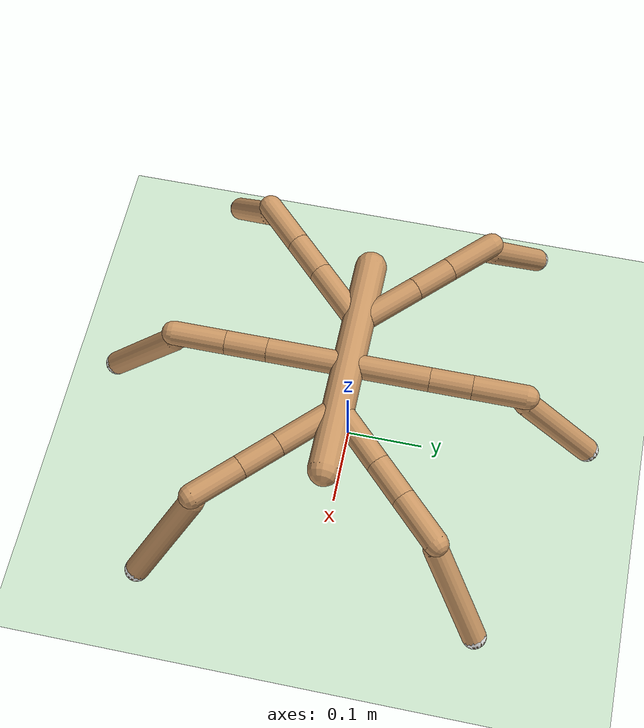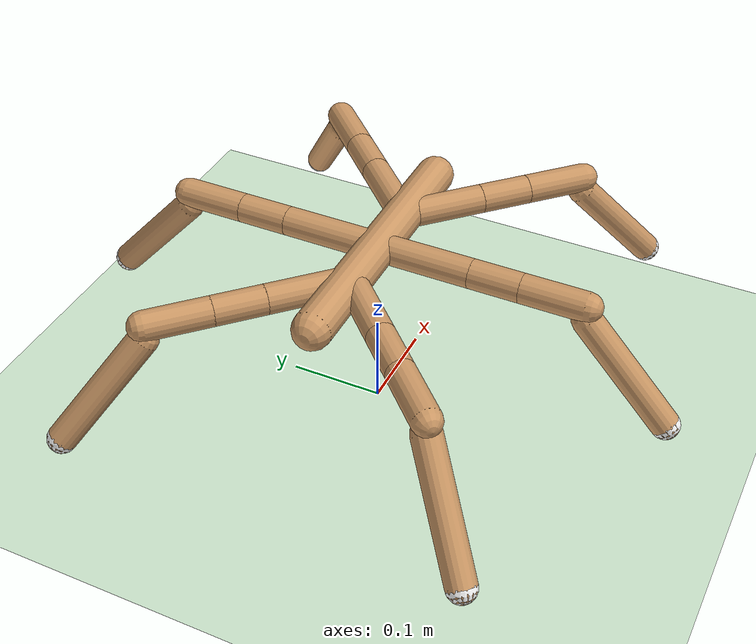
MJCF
<mujoco model="ant">
  <compiler angle="degree" coordinate="local" inertiafromgeom="true"/>
  <option integrator="RK4" timestep="0.01"/>

  <default>
    <joint armature="1" damping="1" limited="true"/>
    <geom conaffinity="0" condim="3" density="5.0" friction="1 0.5 0.5" margin="0.01" rgba="0.8 0.6 0.4 1"/>
  </default>
  <asset>
    <texture builtin="gradient" height="100" rgb1="1 1 1" rgb2="0 0 0" type="skybox" width="100"/>
    <texture builtin="flat" height="1278" mark="cross" markrgb="1 1 1" name="texgeom" random="0.01" rgb1="0.8 0.6 0.4" rgb2="0.8 0.6 0.4" type="cube" width="127"/>
    <texture builtin="checker" height="100" name="texplane" rgb1="0 0 0" rgb2="0.8 0.8 0.8" type="2d" width="100"/>
    <material name="MatPlane" reflectance="0.5" shininess="1" specular="1" texrepeat="60 60" texture="texplane"/>
    <material name="geom" texture="texgeom" texuniform="true"/>
  </asset>
  <worldbody>
    <light cutoff="100" diffuse="1 1 1" dir="-0 0 -1.3" directional="true" exponent="1" pos="0 0 1.3" specular=".1 .1 .1"/>
    <geom conaffinity="1" condim="3" material="MatPlane" name="floor" pos="0 0 0" rgba="0.8 0.9 0.8 1" size="40 40 40" type="plane"/>
    <body name="torso" pos="0 0 0.2">
      <camera name="track" mode="trackcom" pos="0 -3 0.3" xyaxes="1 0 0 0 0 1"/>
      <geom name="torso_geom" fromto="-0.14 0 0 0.14 0 0" size="0.02" mass="1.4" type="capsule"/>

      <joint armature="0" damping="0" limited="false" margin="0.01" name="root" pos="0 0 0" type="free"/>

      <body name="front_left_leg" pos="0.06 0 0">
        <geom fromto="0.0 0.0 0.0 0.06 0.06 0.0" name="aux_fl_geom" size="0.015" type="capsule"/>
        <body name="aux_fl" pos="0.06 0.06 0">
          <joint axis="0 0 1" name="coxa_fl" pos="0.0 0.0 0.0" range="-30 30" type="hinge"/>
          <geom fromto="0.0 0.0 0.0 0.03676 0.03676 0.0" name="coxa_fl_geom" size="0.015" mass="0.015" type="capsule"/>
          <body pos="0.03676 0.03676 0">
            <joint axis="-1 1 0" name="femur_fl" pos="0.0 0.0 0.0" range="-90 30" type="hinge"/>
            <geom fromto="0.0 0.0 0.0 0.0466 0.0466 0.0" name="femur_fl_geom" size="0.015" mass="0.07" type="capsule"/>
             <body pos="0.0466 0.0466 -0.015">
                <joint axis="-1 1 0" name="tibia_fl" pos="0.0 0.0 0.0" range="30 90" type="hinge"/>
                <geom fromto="0.0 0.0 0.0 0.0636 0.0636 -0.1" name="tibia_fl_geom" size="0.015" mass="0.08" type="capsule"/>
                <site name="foot_fl" pos="0.0636 0.0636 -0.1" size=".015" type="sphere" rgba="1.0 1.0 1.0 1.0"/>
             </body>
          </body>
        </body>
      </body>

      <body name="front_right_leg" pos="0.06 0 0">
        <geom fromto="0.0 0.0 0.0 0.06 -0.06 0.0" name="aux_fr_geom" size="0.015" type="capsule"/>
        <body name="aux_fr" pos="0.06 -0.06 0">
          <joint axis="0 0 1" name="coxa_fr" pos="0.0 0.0 0.0" range="-30 30" type="hinge"/>
          <geom fromto="0.0 0.0 0.0 0.03676 -0.03676 0.0" name="coxa_fr_geom" size="0.015" mass="0.015" type="capsule"/>
          <body pos="0.03676 -0.03676 0">
            <joint axis="1 1 0" name="femur_fr" pos="0.0 0.0 0.0" range="-90 30" type="hinge"/>
            <geom fromto="0.0 0.0 0.0 0.0466 -0.0466 0.0" name="femur_fr_geom" size="0.015" mass="0.07" type="capsule"/>
             <body pos="0.0466 -0.0466 -0.015">
                <joint axis="1 1 0" name="tibia_fr" pos="0.0 0.0 0.0" range="30 90" type="hinge"/>
                <geom fromto="0.0 0.0 0.0 0.0636 -0.0636 -0.1" name="tibia_fr_geom" size="0.015" mass="0.08" type="capsule"/>
                <site name="foot_fr" pos="0.0636 -0.0636 -0.1" size=".015" type="sphere" rgba="1.0 1.0 1.0 1.0"/>
            </body>
          </body>
        </body>
      </body>

      <body name="middle_left_leg" pos="0 0 0">
        <geom fromto="0.0 0.0 0.0 0.0 0.1 0.0" name="aux_3_geom" size="0.015" type="capsule"/>
        <body name="aux_ml" pos="0 0.1 0">
        <joint axis="0 0 1" name="coxa_ml" pos="0.0 0.0 0.0" range="-30 30" type="hinge" />
          <geom fromto="0.0 0.0 0.0 0.0 0.052 0.0" name="coxa_ml_geom" size="0.015" mass="0.015" type="capsule"/>
          <body pos="0.0 0.052 0">
            <joint axis="-1 0 0" name="femur_ml" pos="0.0 0.0 0.0" range="-90 30" type="hinge"/>
            <geom fromto="0.0 0.0 0.0 0.0 0.066 0" name="femur_ml_geom" size="0.015" mass="0.07" type="capsule"/>
             <body pos="0.0 0.066 -0.015">
                <joint axis="-1 0 0" name="tibia_ml" pos="0.0 0.0 0.0" range="30 90" type="hinge"/>
                <geom fromto="0.0 0.0 0.0 0.0 0.09 -0.10" name="tibia_ml_geom" size="0.015" mass="0.8" type="capsule"/>
                <site name="foot_ml" pos="0 0.09 -0.1" size=".015" type="sphere" rgba="1.0 1.0 1.0 1.0"/>
            </body>
          </body>
        </body>
      </body>

      <body name="middle_right_leg" pos="0 0 0">
        <geom fromto="0.0 0.0 0.0 0 -0.1 0.0" name="aux_mr_geom" size="0.015" type="capsule"/>
        <body name="aux_mr" pos="0 -0.1 0">
        <joint axis="0 0 1" name="coxa_mr" pos="0.0 0.0 0.0" range="-30 30" type="hinge"/>
          <geom fromto="0.0 0.0 0.0 0.0 -0.052 0.0" name="coxa_mr_geom" size="0.015" mass="0.015" type="capsule"/>
          <body pos="0.0 -0.052 0">
            <joint axis="1 0 0" name="femur_mr" pos="0.0 0.0 0.0" range="-90 30" type="hinge"/>
            <geom fromto="0.0 0.0 0.0 0.0 -0.066 0.0" name="femur_mr_geom" size="0.015" mass="0.07" type="capsule"/>
             <body pos="0.0 -0.066 -0.015">
                <joint axis="1 0 0" name="tibia_mr" pos="0.0 0.0 0.0" range="30 90" type="hinge"/>
                <geom fromto="0.0 0.0 0.0 0.0 -0.09 -0.1" name="tibia_mr_geom" size="0.015" mass="0.08" type="capsule"/>
                <site name="foot_mr" pos="0 -0.09 -0.1" size=".015" type="sphere" rgba="1.0 1.0 1.0 1.0"/>
            </body>
          </body>
        </body>
      </body>

      <body name="hind_left_leg" pos="-0.06 0 0">
        <geom fromto="0.0 0.0 0.0 -0.06 0.06 0.0" name="aux_hl_geom" size="0.015" type="capsule"/>
        <body name="aux_hl" pos="-0.06 0.06 0">
        <joint axis="0 0 1" name="coxa_hl" pos="0.0 0.0 0.0" range="-30 30" type="hinge"/>
          <geom fromto="0.0 0.0 0.0 -0.03676 0.03676 0.0" name="coxa_hl_geom" size="0.015" mass="0.015" type="capsule"/>
          <body pos="-0.03676 0.03676 0">
            <joint axis="-1 -1 0" name="femur_hl" pos="0.0 0.0 0.0" range="-90 30" type="hinge"/>
            <geom fromto="0.0 0.0 0.0 -0.0466 0.0466 0" name="femur_hl_geom" size="0.015" mass="0.07"  type="capsule"/>
             <body pos="-0.0466 0.04660 -0.015">
                <joint axis="-1 -1 0" name="tibia_hl" pos="0.0 0.0 0.0" range="30 90" type="hinge"/>
                <geom fromto="0.0 0.0 0.0 -0.0636 0.0636 -0.1" name="tibia_hl_geom" size="0.015" mass="0.08" type="capsule"/>
               <site name="foot_hl" pos="-0.0636 0.0636 -0.1" size=".015" type="sphere" rgba="1.0 1.0 1.0 1.0"/>
            </body>
          </body>
        </body>
      </body>

      <body name="hind_right_leg" pos="-0.06 0 0">
        <geom fromto="0.0 0.0 0.0 -0.06 -0.06 0.0" name="aux_hr_geom" size="0.015" type="capsule"/>
        <body name="aux_hr" pos="-0.06 -0.06 0">
        <joint axis="0 0 1" name="coxa_hr" pos="0.0 0.0 0.0" range="-30 30" type="hinge"/>
          <geom fromto="0.0 0.0 0.0 -0.03676 -0.03676 0.0" name="coxa_hr_geom" size="0.015" mass="0.015" type="capsule"/>
          <body pos="-0.03676 -0.03676 0">
            <joint axis="1 -1 0" name="femur_hr" pos="0.0 0.0 0.0" range="-90 30" type="hinge"/>
            <geom fromto="0.0 0.0 0.0 -0.0466 -0.0466 0.0" name="femur_hr_geom" size="0.015" mass="0.07" type="capsule"/>
             <body pos="-0.0466 -0.0466 -0.015">
                <joint axis="1 -1 0" name="tibia_hr" pos="0.0 0.0 0.0" range="30 90" type="hinge"/>
                <geom fromto="0.0 0.0 0.0 -0.0636 -0.0636 -0.1" name="tibia_hr_geom" size="0.015" mass="0.08" type="capsule"/>
               <site name="foot_hr" pos="-0.0636 -0.0636 -0.1" size=".015" type="sphere" rgba="1.0 1.0 1.0 1.0"/>
            </body>
          </body>
        </body>
      </body>

    </body>
  </worldbody>

  <sensor>
     <touch name="gc_fl" site="foot_fl" />
  </sensor>

  <sensor>
     <touch name="gc_fr" site="foot_fr" />
  </sensor>

  <sensor>
     <touch name="gc_ml" site="foot_ml" />
  </sensor>

  <sensor>
     <touch name="gc_mr" site="foot_mr" />
  </sensor>

  <sensor>
     <touch name="gc_hl" site="foot_hl" />
  </sensor>

  <sensor>
     <touch name="gc_hr" site="foot_hr" />
  </sensor>

  <actuator>
    <motor joint="coxa_fl" ctrllimited="true" ctrlrange="-1.0 1.0" gear="150"/>
    <motor joint="femur_fl" ctrllimited="true" ctrlrange="-1.0 1.0" gear="150"/>
    <motor joint="tibia_fl" ctrllimited="true" ctrlrange="-1.0 1.0" gear="150"/>
    <motor joint="coxa_fr" ctrllimited="true" ctrlrange="-1.0 1.0" gear="150"/>
    <motor joint="femur_fr" ctrllimited="true" ctrlrange="-1.0 1.0" gear="150"/>
    <motor joint="tibia_fr" ctrllimited="true" ctrlrange="-1.0 1.0" gear="150"/>
    <motor joint="coxa_ml" ctrllimited="true" ctrlrange="-1.0 1.0" gear="150"/>
    <motor joint="femur_ml" ctrllimited="true" ctrlrange="-1.0 1.0" gear="150"/>
    <motor joint="tibia_ml" ctrllimited="true" ctrlrange="-1.0 1.0" gear="150"/>
    <motor joint="coxa_mr" ctrllimited="true" ctrlrange="-1.0 1.0" gear="150"/>
    <motor joint="femur_mr" ctrllimited="true" ctrlrange="-1.0 1.0" gear="150"/>
    <motor joint="tibia_mr" ctrllimited="true" ctrlrange="-1.0 1.0" gear="150"/>
    <motor joint="coxa_hl" ctrllimited="true" ctrlrange="-1.0 1.0" gear="150"/>
    <motor joint="femur_hl" ctrllimited="true" ctrlrange="-1.0 1.0" gear="150"/>
    <motor joint="tibia_hl" ctrllimited="true" ctrlrange="-1.0 1.0" gear="150"/>
    <motor joint="coxa_hr" ctrllimited="true" ctrlrange="-1.0 1.0" gear="150"/>
    <motor joint="femur_hr" ctrllimited="true" ctrlrange="-1.0 1.0" gear="150"/>
    <motor joint="tibia_hr" ctrllimited="true" ctrlrange="-1.0 1.0" gear="150"/>
  </actuator>

</mujoco>
